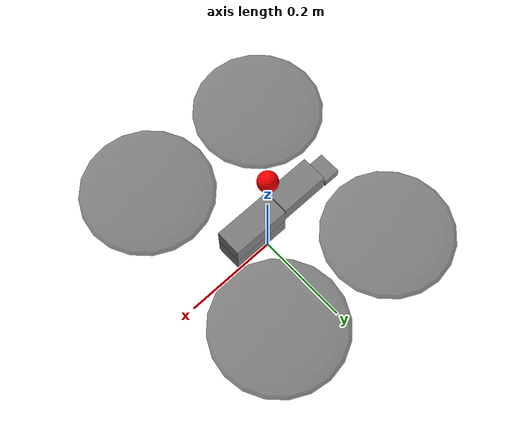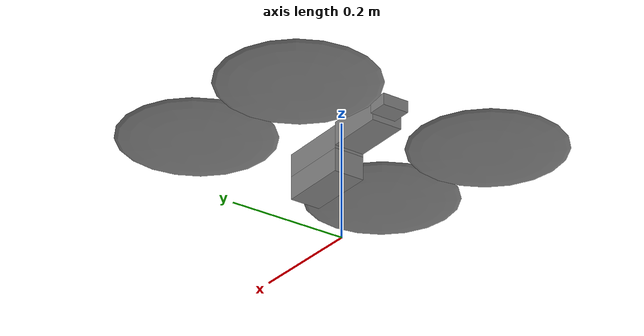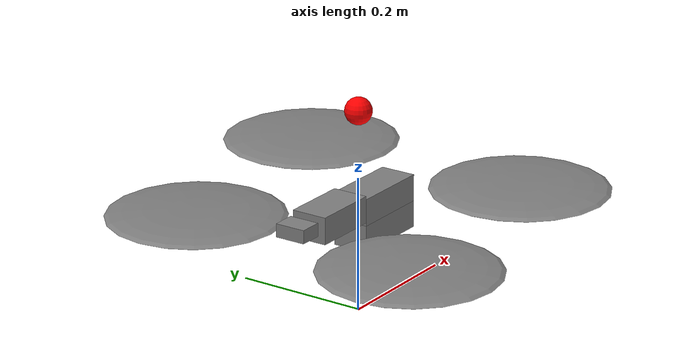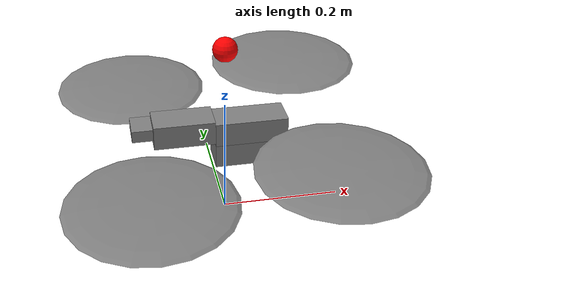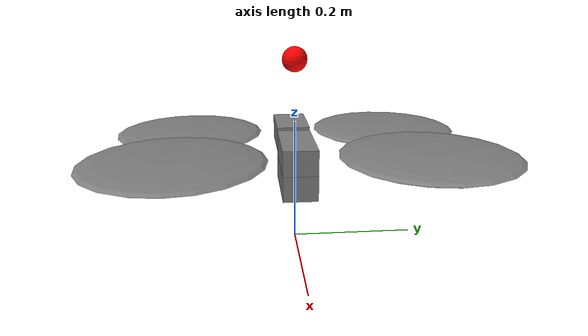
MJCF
<mujoco model="Skydio X2">
  <compiler autolimits="true" assetdir="../assets"/>

  <option timestep="0.01" density="1.225" viscosity="1.8e-5"/>

  <default>
    <default class="x2">
      <geom mass="0"/>
      <motor ctrlrange="0 13"/>
      <mesh scale="0.01 0.01 0.01"/>
      <default class="visual">
        <geom group="3" type="mesh" contype="0" conaffinity="0"/>
      </default>
      <default class="collision">
        <geom group="2" type="box"/>
        <default class="rotor">
          <geom type="ellipsoid" size=".13 .13 .01"/>
        </default>
      </default>
      <site group="5"/>
    </default>
  </default>

  <asset>
    <texture type="2d" file="X2_lowpoly_texture_SpinningProps_1024.png"/>
    <material name="phong3SG" texture="X2_lowpoly_texture_SpinningProps_1024"/>
    <material name="invisible" rgba="0 0 0 0"/>

    <mesh class="x2" file="X2_lowpoly.obj"/>

  </asset>

  <worldbody>
    <light name="spotlight" mode="targetbodycom" target="x2" pos="0 -1 2"/>
    <!-- Mocap body (no physics) -->
    <body name="mocap_drone" mocap="true" pos="0 0 0.3">
      <geom type="sphere" size="0.02" rgba="1 0 0 1"/>
    </body>
    <!-- Real dynamic body -->
    <body name="x2" pos="0 0 0.1" childclass="x2">
      <freejoint/>
      <camera name="track" pos="-1 0 .5" xyaxes="0 -1 0 1 0 2" mode="trackcom"/>
      <site name="imu" pos="0 0 .02"/>
      <geom material="phong3SG" mesh="X2_lowpoly" class="visual" quat="0 0 1 1"/>
      <geom class="collision" size=".06 .027 .02" pos=".04 0 .02"/>
      <geom class="collision" size=".06 .027 .02" pos=".04 0 .06"/>
      <geom class="collision" size=".05 .027 .02" pos="-.07 0 .065"/>
      <geom class="collision" size=".023 .017 .01" pos="-.137 .008 .065" quat="1 0 0 1"/>
      <geom name="rotor1" class="rotor" pos="-.14 -.18 .05" mass=".25"/>
      <geom name="rotor2" class="rotor" pos="-.14 .18 .05" mass=".25"/>
      <geom name="rotor3" class="rotor" pos=".14 .18 .08" mass=".25"/>
      <geom name="rotor4" class="rotor" pos=".14 -.18 .08" mass=".25"/>
      <geom size=".16 .04 .02" pos="0 0 0.02" type="ellipsoid" mass=".325" class="visual" material="invisible"/>
      <site name="thrust1" pos="-.14 -.18 .05"/>
      <site name="thrust2" pos="-.14 .18 .05"/>
      <site name="thrust3" pos=".14 .18 .08"/>
      <site name="thrust4" pos=".14 -.18 .08"/>
    </body>
  </worldbody>

  <!-- Weld constraint -->
  <equality>
    <weld body1="mocap_drone" body2="x2"/>
  </equality>

  <sensor>
    <framequat name="body_quat" objtype="site" objname="imu"/>
    <frameangvel name="body_angvel" objtype="site" objname="imu"/>
    <framelinacc name="body_linacc" objtype="site" objname="imu"/>
    <framelinvel name="body_linvel" objtype="site" objname="imu"/>

  </sensor>

</mujoco>
